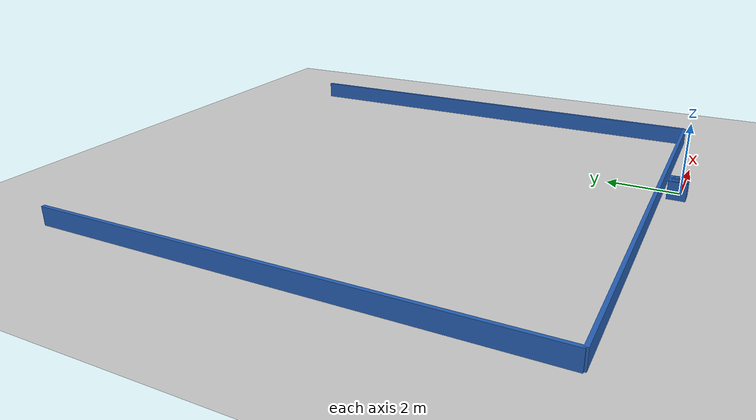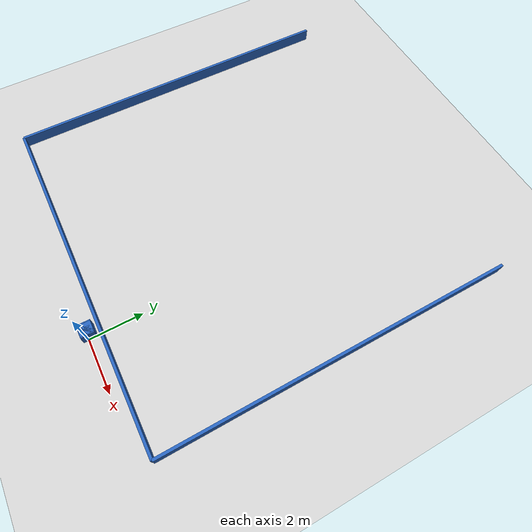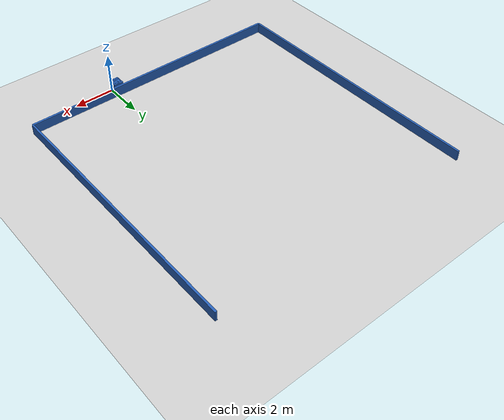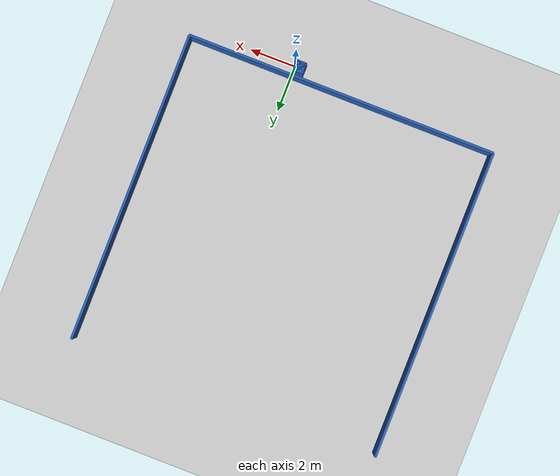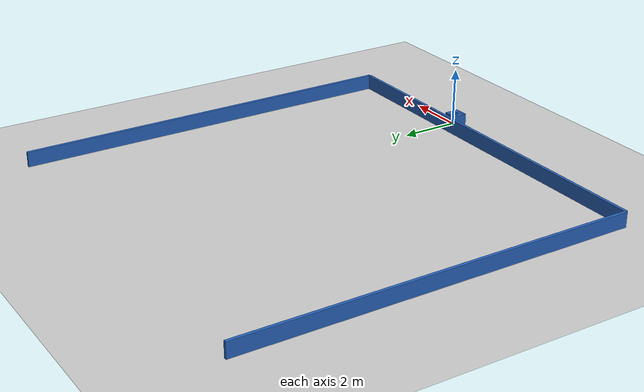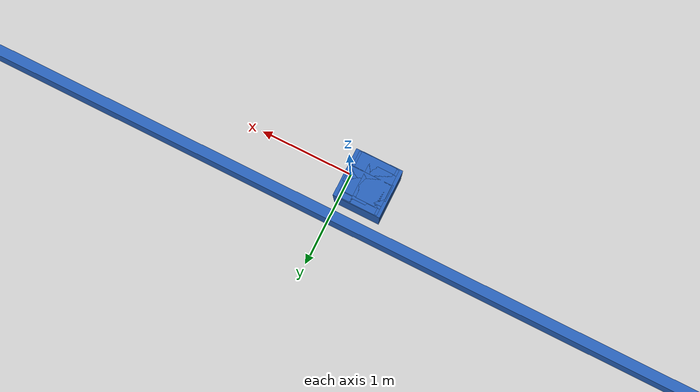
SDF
<?xml version="1.0" ?>
    <sdf version="1.5">
      <world name="default">
        <!-- A global light source -->
        <include>
          <uri>model://sun</uri>
        </include>
        <!-- A ground plane -->
        <include>
          <uri>model://ground_plane</uri>
        </include>

    <model name='libopen_space_final_T2B_105_8'>
      <static>1</static>
      <pose frame=''>-0.225000 0.075000 0.000000 0.000000 0.000000 0.000000</pose>
      <link name='link'>
        <inertial>
          <mass>1</mass>
          <inertia>
            <ixx>0.145833</ixx>
            <ixy>0</ixy>
            <ixz>0</ixz>
            <iyy>0.145833</iyy>
            <iyz>0</iyz>
            <izz>0.125</izz>
          </inertia>
        </inertial>
        <collision name='collision'>
          <geometry>
            <box>
              <size>0.42 0.48 1</size>
            </box>
          </geometry>
          <max_contacts>10</max_contacts>
          <surface>
            <contact>
              <ode/>
            </contact>
            <bounce/>
            <friction>
              <torsional>
                <ode/>
              </torsional>
              <ode/>
            </friction>
          </surface>
        </collision>
        <visual name='visual'>
          <geometry>
            <box>
              <size>0.42 0.48 1</size>
            </box>
          </geometry>
	    <material>
              <ambient>0.152000 0.379000 0.720000 1</ambient>
	      <diffuse>0.152000 0.379000 0.720000 1</diffuse>
          </material>
          <material>
            <script>
              <name>Gazebo/Grey</name>
              <uri>file://media/materials/scripts/gazebo.material</uri>
            </script>
          </material>
        </visual>
        <self_collide>0</self_collide>
        <kinematic>0</kinematic>
        <gravity>1</gravity>
      </link>
      <plugin name='libopen_space_final_T2B_105_8' filename='libopen_space_final_T2B_105_8.so'/>
    </model>

    <model name='libopen_space_final_T2B_51_1'>
      <static>1</static>
      <pose frame=''>-0.225000 0.075000 0.000000 0.000000 0.000000 0.000000</pose>
      <link name='link'>
        <inertial>
          <mass>1</mass>
          <inertia>
            <ixx>0.145833</ixx>
            <ixy>0</ixy>
            <ixz>0</ixz>
            <iyy>0.145833</iyy>
            <iyz>0</iyz>
            <izz>0.125</izz>
          </inertia>
        </inertial>
        <collision name='collision'>
          <geometry>
            <box>
              <size>0.40 0.24 1</size>
            </box>
          </geometry>
          <max_contacts>10</max_contacts>
          <surface>
            <contact>
              <ode/>
            </contact>
            <bounce/>
            <friction>
              <torsional>
                <ode/>
              </torsional>
              <ode/>
            </friction>
          </surface>
        </collision>
        <visual name='visual'>
          <geometry>
            <box>
              <size>0.40 0.24 1</size>
            </box>
          </geometry>
	    <material>
              <ambient>0.152000 0.379000 0.720000 1</ambient>
	      <diffuse>0.152000 0.379000 0.720000 1</diffuse>
          </material>
          <material>
            <script>
              <name>Gazebo/Grey</name>
              <uri>file://media/materials/scripts/gazebo.material</uri>
            </script>
          </material>
        </visual>
        <self_collide>0</self_collide>
        <kinematic>0</kinematic>
        <gravity>1</gravity>
      </link>
      <plugin name='libopen_space_final_T2B_51_1' filename='libopen_space_final_T2B_51_1.so'/>
    </model>

    <model name='libopen_space_final_T2B_116_74'>
      <static>1</static>
      <pose frame=''>-0.225000 0.075000 0.000000 0.000000 0.000000 0.000000</pose>
      <link name='link'>
        <inertial>
          <mass>1</mass>
          <inertia>
            <ixx>0.145833</ixx>
            <ixy>0</ixy>
            <ixz>0</ixz>
            <iyy>0.145833</iyy>
            <iyz>0</iyz>
            <izz>0.125</izz>
          </inertia>
        </inertial>
        <collision name='collision'>
          <geometry>
            <box>
              <size>0.12 0.32 1</size>
            </box>
          </geometry>
          <max_contacts>10</max_contacts>
          <surface>
            <contact>
              <ode/>
            </contact>
            <bounce/>
            <friction>
              <torsional>
                <ode/>
              </torsional>
              <ode/>
            </friction>
          </surface>
        </collision>
        <visual name='visual'>
          <geometry>
            <box>
              <size>0.12 0.32 1</size>
            </box>
          </geometry>
	    <material>
              <ambient>0.152000 0.379000 0.720000 1</ambient>
	      <diffuse>0.152000 0.379000 0.720000 1</diffuse>
          </material>
          <material>
            <script>
              <name>Gazebo/Grey</name>
              <uri>file://media/materials/scripts/gazebo.material</uri>
            </script>
          </material>
        </visual>
        <self_collide>0</self_collide>
        <kinematic>0</kinematic>
        <gravity>1</gravity>
      </link>
      <plugin name='libopen_space_final_T2B_116_74' filename='libopen_space_final_T2B_116_74.so'/>
    </model>

    <model name='libopen_space_final_T2B_73_55'>
      <static>1</static>
      <pose frame=''>-0.225000 0.075000 0.000000 0.000000 0.000000 0.000000</pose>
      <link name='link'>
        <inertial>
          <mass>1</mass>
          <inertia>
            <ixx>0.145833</ixx>
            <ixy>0</ixy>
            <ixz>0</ixz>
            <iyy>0.145833</iyy>
            <iyz>0</iyz>
            <izz>0.125</izz>
          </inertia>
        </inertial>
        <collision name='collision'>
          <geometry>
            <box>
              <size>0.15 0.34 1</size>
            </box>
          </geometry>
          <max_contacts>10</max_contacts>
          <surface>
            <contact>
              <ode/>
            </contact>
            <bounce/>
            <friction>
              <torsional>
                <ode/>
              </torsional>
              <ode/>
            </friction>
          </surface>
        </collision>
        <visual name='visual'>
          <geometry>
            <box>
              <size>0.15 0.34 1</size>
            </box>
          </geometry>
	    <material>
              <ambient>0.152000 0.379000 0.720000 1</ambient>
	      <diffuse>0.152000 0.379000 0.720000 1</diffuse>
          </material>
          <material>
            <script>
              <name>Gazebo/Grey</name>
              <uri>file://media/materials/scripts/gazebo.material</uri>
            </script>
          </material>
        </visual>
        <self_collide>0</self_collide>
        <kinematic>0</kinematic>
        <gravity>1</gravity>
      </link>
      <plugin name='libopen_space_final_T2B_73_55' filename='libopen_space_final_T2B_73_55.so'/>
    </model>

    <model name='libopen_space_final_T2B_81_4'>
      <static>1</static>
      <pose frame=''>-0.225000 0.075000 0.000000 0.000000 0.000000 0.000000</pose>
      <link name='link'>
        <inertial>
          <mass>1</mass>
          <inertia>
            <ixx>0.145833</ixx>
            <ixy>0</ixy>
            <ixz>0</ixz>
            <iyy>0.145833</iyy>
            <iyz>0</iyz>
            <izz>0.125</izz>
          </inertia>
        </inertial>
        <collision name='collision'>
          <geometry>
            <box>
              <size>0.37 0.49 1</size>
            </box>
          </geometry>
          <max_contacts>10</max_contacts>
          <surface>
            <contact>
              <ode/>
            </contact>
            <bounce/>
            <friction>
              <torsional>
                <ode/>
              </torsional>
              <ode/>
            </friction>
          </surface>
        </collision>
        <visual name='visual'>
          <geometry>
            <box>
              <size>0.37 0.49 1</size>
            </box>
          </geometry>
	    <material>
              <ambient>0.152000 0.379000 0.720000 1</ambient>
	      <diffuse>0.152000 0.379000 0.720000 1</diffuse>
          </material>
          <material>
            <script>
              <name>Gazebo/Grey</name>
              <uri>file://media/materials/scripts/gazebo.material</uri>
            </script>
          </material>
        </visual>
        <self_collide>0</self_collide>
        <kinematic>0</kinematic>
        <gravity>1</gravity>
      </link>
      <plugin name='libopen_space_final_T2B_81_4' filename='libopen_space_final_T2B_81_4.so'/>
    </model>

    <model name='libopen_space_final_T2B_91_29'>
      <static>1</static>
      <pose frame=''>-0.225000 0.075000 0.000000 0.000000 0.000000 0.000000</pose>
      <link name='link'>
        <inertial>
          <mass>1</mass>
          <inertia>
            <ixx>0.145833</ixx>
            <ixy>0</ixy>
            <ixz>0</ixz>
            <iyy>0.145833</iyy>
            <iyz>0</iyz>
            <izz>0.125</izz>
          </inertia>
        </inertial>
        <collision name='collision'>
          <geometry>
            <box>
              <size>0.43 0.14 1</size>
            </box>
          </geometry>
          <max_contacts>10</max_contacts>
          <surface>
            <contact>
              <ode/>
            </contact>
            <bounce/>
            <friction>
              <torsional>
                <ode/>
              </torsional>
              <ode/>
            </friction>
          </surface>
        </collision>
        <visual name='visual'>
          <geometry>
            <box>
              <size>0.43 0.14 1</size>
            </box>
          </geometry>
	    <material>
              <ambient>0.152000 0.379000 0.720000 1</ambient>
	      <diffuse>0.152000 0.379000 0.720000 1</diffuse>
          </material>
          <material>
            <script>
              <name>Gazebo/Grey</name>
              <uri>file://media/materials/scripts/gazebo.material</uri>
            </script>
          </material>
        </visual>
        <self_collide>0</self_collide>
        <kinematic>0</kinematic>
        <gravity>1</gravity>
      </link>
      <plugin name='libopen_space_final_T2B_91_29' filename='libopen_space_final_T2B_91_29.so'/>
    </model>

    <model name='libopen_space_final_T2B_79_93'>
      <static>1</static>
      <pose frame=''>-0.225000 0.075000 0.000000 0.000000 0.000000 0.000000</pose>
      <link name='link'>
        <inertial>
          <mass>1</mass>
          <inertia>
            <ixx>0.145833</ixx>
            <ixy>0</ixy>
            <ixz>0</ixz>
            <iyy>0.145833</iyy>
            <iyz>0</iyz>
            <izz>0.125</izz>
          </inertia>
        </inertial>
        <collision name='collision'>
          <geometry>
            <box>
              <size>0.15 0.40 1</size>
            </box>
          </geometry>
          <max_contacts>10</max_contacts>
          <surface>
            <contact>
              <ode/>
            </contact>
            <bounce/>
            <friction>
              <torsional>
                <ode/>
              </torsional>
              <ode/>
            </friction>
          </surface>
        </collision>
        <visual name='visual'>
          <geometry>
            <box>
              <size>0.15 0.40 1</size>
            </box>
          </geometry>
	    <material>
              <ambient>0.152000 0.379000 0.720000 1</ambient>
	      <diffuse>0.152000 0.379000 0.720000 1</diffuse>
          </material>
          <material>
            <script>
              <name>Gazebo/Grey</name>
              <uri>file://media/materials/scripts/gazebo.material</uri>
            </script>
          </material>
        </visual>
        <self_collide>0</self_collide>
        <kinematic>0</kinematic>
        <gravity>1</gravity>
      </link>
      <plugin name='libopen_space_final_T2B_79_93' filename='libopen_space_final_T2B_79_93.so'/>
    </model>

    <model name='libopen_space_final_T2B_64_52'>
      <static>1</static>
      <pose frame=''>-0.225000 0.075000 0.000000 0.000000 0.000000 0.000000</pose>
      <link name='link'>
        <inertial>
          <mass>1</mass>
          <inertia>
            <ixx>0.145833</ixx>
            <ixy>0</ixy>
            <ixz>0</ixz>
            <iyy>0.145833</iyy>
            <iyz>0</iyz>
            <izz>0.125</izz>
          </inertia>
        </inertial>
        <collision name='collision'>
          <geometry>
            <box>
              <size>0.45 0.17 1</size>
            </box>
          </geometry>
          <max_contacts>10</max_contacts>
          <surface>
            <contact>
              <ode/>
            </contact>
            <bounce/>
            <friction>
              <torsional>
                <ode/>
              </torsional>
              <ode/>
            </friction>
          </surface>
        </collision>
        <visual name='visual'>
          <geometry>
            <box>
              <size>0.45 0.17 1</size>
            </box>
          </geometry>
	    <material>
              <ambient>0.152000 0.379000 0.720000 1</ambient>
	      <diffuse>0.152000 0.379000 0.720000 1</diffuse>
          </material>
          <material>
            <script>
              <name>Gazebo/Grey</name>
              <uri>file://media/materials/scripts/gazebo.material</uri>
            </script>
          </material>
        </visual>
        <self_collide>0</self_collide>
        <kinematic>0</kinematic>
        <gravity>1</gravity>
      </link>
      <plugin name='libopen_space_final_T2B_64_52' filename='libopen_space_final_T2B_64_52.so'/>
    </model>

    <model name='libopen_space_final_T2B_103_35'>
      <static>1</static>
      <pose frame=''>-0.225000 0.075000 0.000000 0.000000 0.000000 0.000000</pose>
      <link name='link'>
        <inertial>
          <mass>1</mass>
          <inertia>
            <ixx>0.145833</ixx>
            <ixy>0</ixy>
            <ixz>0</ixz>
            <iyy>0.145833</iyy>
            <iyz>0</iyz>
            <izz>0.125</izz>
          </inertia>
        </inertial>
        <collision name='collision'>
          <geometry>
            <box>
              <size>0.49 0.50 1</size>
            </box>
          </geometry>
          <max_contacts>10</max_contacts>
          <surface>
            <contact>
              <ode/>
            </contact>
            <bounce/>
            <friction>
              <torsional>
                <ode/>
              </torsional>
              <ode/>
            </friction>
          </surface>
        </collision>
        <visual name='visual'>
          <geometry>
            <box>
              <size>0.49 0.50 1</size>
            </box>
          </geometry>
	    <material>
              <ambient>0.152000 0.379000 0.720000 1</ambient>
	      <diffuse>0.152000 0.379000 0.720000 1</diffuse>
          </material>
          <material>
            <script>
              <name>Gazebo/Grey</name>
              <uri>file://media/materials/scripts/gazebo.material</uri>
            </script>
          </material>
        </visual>
        <self_collide>0</self_collide>
        <kinematic>0</kinematic>
        <gravity>1</gravity>
      </link>
      <plugin name='libopen_space_final_T2B_103_35' filename='libopen_space_final_T2B_103_35.so'/>
    </model>

    <model name='libopen_space_final_T2B_111_91'>
      <static>1</static>
      <pose frame=''>-0.225000 0.075000 0.000000 0.000000 0.000000 0.000000</pose>
      <link name='link'>
        <inertial>
          <mass>1</mass>
          <inertia>
            <ixx>0.145833</ixx>
            <ixy>0</ixy>
            <ixz>0</ixz>
            <iyy>0.145833</iyy>
            <iyz>0</iyz>
            <izz>0.125</izz>
          </inertia>
        </inertial>
        <collision name='collision'>
          <geometry>
            <box>
              <size>0.41 0.16 1</size>
            </box>
          </geometry>
          <max_contacts>10</max_contacts>
          <surface>
            <contact>
              <ode/>
            </contact>
            <bounce/>
            <friction>
              <torsional>
                <ode/>
              </torsional>
              <ode/>
            </friction>
          </surface>
        </collision>
        <visual name='visual'>
          <geometry>
            <box>
              <size>0.41 0.16 1</size>
            </box>
          </geometry>
	    <material>
              <ambient>0.152000 0.379000 0.720000 1</ambient>
	      <diffuse>0.152000 0.379000 0.720000 1</diffuse>
          </material>
          <material>
            <script>
              <name>Gazebo/Grey</name>
              <uri>file://media/materials/scripts/gazebo.material</uri>
            </script>
          </material>
        </visual>
        <self_collide>0</self_collide>
        <kinematic>0</kinematic>
        <gravity>1</gravity>
      </link>
      <plugin name='libopen_space_final_T2B_111_91' filename='libopen_space_final_T2B_111_91.so'/>
    </model>

    <model name='libopen_space_final_T2B_115_72'>
      <static>1</static>
      <pose frame=''>-0.225000 0.075000 0.000000 0.000000 0.000000 0.000000</pose>
      <link name='link'>
        <inertial>
          <mass>1</mass>
          <inertia>
            <ixx>0.145833</ixx>
            <ixy>0</ixy>
            <ixz>0</ixz>
            <iyy>0.145833</iyy>
            <iyz>0</iyz>
            <izz>0.125</izz>
          </inertia>
        </inertial>
        <collision name='collision'>
          <geometry>
            <box>
              <size>0.42 0.29 1</size>
            </box>
          </geometry>
          <max_contacts>10</max_contacts>
          <surface>
            <contact>
              <ode/>
            </contact>
            <bounce/>
            <friction>
              <torsional>
                <ode/>
              </torsional>
              <ode/>
            </friction>
          </surface>
        </collision>
        <visual name='visual'>
          <geometry>
            <box>
              <size>0.42 0.29 1</size>
            </box>
          </geometry>
	    <material>
              <ambient>0.152000 0.379000 0.720000 1</ambient>
	      <diffuse>0.152000 0.379000 0.720000 1</diffuse>
          </material>
          <material>
            <script>
              <name>Gazebo/Grey</name>
              <uri>file://media/materials/scripts/gazebo.material</uri>
            </script>
          </material>
        </visual>
        <self_collide>0</self_collide>
        <kinematic>0</kinematic>
        <gravity>1</gravity>
      </link>
      <plugin name='libopen_space_final_T2B_115_72' filename='libopen_space_final_T2B_115_72.so'/>
    </model>

    <model name='libopen_space_final_T2B_66_3'>
      <static>1</static>
      <pose frame=''>-0.225000 0.075000 0.000000 0.000000 0.000000 0.000000</pose>
      <link name='link'>
        <inertial>
          <mass>1</mass>
          <inertia>
            <ixx>0.145833</ixx>
            <ixy>0</ixy>
            <ixz>0</ixz>
            <iyy>0.145833</iyy>
            <iyz>0</iyz>
            <izz>0.125</izz>
          </inertia>
        </inertial>
        <collision name='collision'>
          <geometry>
            <box>
              <size>0.35 0.36 1</size>
            </box>
          </geometry>
          <max_contacts>10</max_contacts>
          <surface>
            <contact>
              <ode/>
            </contact>
            <bounce/>
            <friction>
              <torsional>
                <ode/>
              </torsional>
              <ode/>
            </friction>
          </surface>
        </collision>
        <visual name='visual'>
          <geometry>
            <box>
              <size>0.35 0.36 1</size>
            </box>
          </geometry>
	    <material>
              <ambient>0.152000 0.379000 0.720000 1</ambient>
	      <diffuse>0.152000 0.379000 0.720000 1</diffuse>
          </material>
          <material>
            <script>
              <name>Gazebo/Grey</name>
              <uri>file://media/materials/scripts/gazebo.material</uri>
            </script>
          </material>
        </visual>
        <self_collide>0</self_collide>
        <kinematic>0</kinematic>
        <gravity>1</gravity>
      </link>
      <plugin name='libopen_space_final_T2B_66_3' filename='libopen_space_final_T2B_66_3.so'/>
    </model>

    <model name='libopen_space_final_T2B_141_33'>
      <static>1</static>
      <pose frame=''>-0.225000 0.075000 0.000000 0.000000 0.000000 0.000000</pose>
      <link name='link'>
        <inertial>
          <mass>1</mass>
          <inertia>
            <ixx>0.145833</ixx>
            <ixy>0</ixy>
            <ixz>0</ixz>
            <iyy>0.145833</iyy>
            <iyz>0</iyz>
            <izz>0.125</izz>
          </inertia>
        </inertial>
        <collision name='collision'>
          <geometry>
            <box>
              <size>0.42 0.35 1</size>
            </box>
          </geometry>
          <max_contacts>10</max_contacts>
          <surface>
            <contact>
              <ode/>
            </contact>
            <bounce/>
            <friction>
              <torsional>
                <ode/>
              </torsional>
              <ode/>
            </friction>
          </surface>
        </collision>
        <visual name='visual'>
          <geometry>
            <box>
              <size>0.42 0.35 1</size>
            </box>
          </geometry>
	    <material>
              <ambient>0.152000 0.379000 0.720000 1</ambient>
	      <diffuse>0.152000 0.379000 0.720000 1</diffuse>
          </material>
          <material>
            <script>
              <name>Gazebo/Grey</name>
              <uri>file://media/materials/scripts/gazebo.material</uri>
            </script>
          </material>
        </visual>
        <self_collide>0</self_collide>
        <kinematic>0</kinematic>
        <gravity>1</gravity>
      </link>
      <plugin name='libopen_space_final_T2B_141_33' filename='libopen_space_final_T2B_141_33.so'/>
    </model>

        <model name='bottom_wall'>
          <static>1</static>
          <pose frame=''>-2.25 0.5 0.000000 0.000000 0.000000 1.57079632</pose>
          <link name='link'>
            <inertial>
            <mass>1</mass>
            <inertia>
              <ixx>0.145833</ixx>
              <ixy>0</ixy>
              <ixz>0</ixz>
              <iyy>0.145833</iyy>
              <iyz>0</iyz>
              <izz>0.125</izz>
            </inertia>
            </inertial>
            <collision name='collision'>
            <geometry>
              <box>
              <size>0.1 13.5 1</size>
              </box>
            </geometry>
            <max_contacts>10</max_contacts>
            <surface>
              <contact>
              <ode/>
              </contact>
              <bounce/>
              <friction>
              <torsional>
                <ode/>
              </torsional>
              <ode/>
              </friction>
            </surface>
            </collision>
            <visual name='visual'>
            <geometry>
              <box>
              <size>0.1 13.5 1</size>
              </box>
            </geometry>
            <material>
              <ambient>0.152000 0.379000 0.720000 1</ambient>
            <diffuse>0.152000 0.379000 0.720000 1</diffuse>
            </material>
            <material>
              <script>
              <name>Gazebo/Grey</name>
              <uri>file://media/materials/scripts/gazebo.material</uri>
              </script>
            </material>
            </visual>
            <self_collide>0</self_collide>
            <kinematic>0</kinematic>
            <gravity>1</gravity>
          </link>
        </model>

        <model name='left_wall'>
          <static>1</static>
          <pose frame=''>-9 7.25 0.000000 0.000000 0.000000 0.000000</pose>
          <link name='link'>
            <inertial>
            <mass>1</mass>
            <inertia>
              <ixx>0.145833</ixx>
              <ixy>0</ixy>
              <ixz>0</ixz>
              <iyy>0.145833</iyy>
              <iyz>0</iyz>
              <izz>0.125</izz>
            </inertia>
            </inertial>
            <collision name='collision'>
            <geometry>
              <box>
              <size>0.1 13.5 1</size>
              </box>
            </geometry>
            <max_contacts>10</max_contacts>
            <surface>
              <contact>
              <ode/>
              </contact>
              <bounce/>
              <friction>
              <torsional>
                <ode/>
              </torsional>
              <ode/>
              </friction>
            </surface>
            </collision>
            <visual name='visual'>
            <geometry>
              <box>
              <size>0.1 13.5 1</size>
              </box>
            </geometry>
            <material>
              <ambient>0.152000 0.379000 0.720000 1</ambient>
            <diffuse>0.152000 0.379000 0.720000 1</diffuse>
            </material>
            <material>
              <script>
              <name>Gazebo/Grey</name>
              <uri>file://media/materials/scripts/gazebo.material</uri>
              </script>
            </material>
            </visual>
            <self_collide>0</self_collide>
            <kinematic>0</kinematic>
            <gravity>1</gravity>
          </link>
        </model>

        <model name='right_wall'>
          <static>1</static>
          <pose frame=''>4.5 7.25 0.000000 0.000000 0.000000 0.000000</pose>
          <link name='link'>
            <inertial>
            <mass>1</mass>
            <inertia>
              <ixx>0.145833</ixx>
              <ixy>0</ixy>
              <ixz>0</ixz>
              <iyy>0.145833</iyy>
              <iyz>0</iyz>
              <izz>0.125</izz>
            </inertia>
            </inertial>
            <collision name='collision'>
            <geometry>
              <box>
              <size>0.1 13.5 1</size>
              </box>
            </geometry>
            <max_contacts>10</max_contacts>
            <surface>
              <contact>
              <ode/>
              </contact>
              <bounce/>
              <friction>
              <torsional>
                <ode/>
              </torsional>
              <ode/>
              </friction>
            </surface>
            </collision>
            <visual name='visual'>
            <geometry>
              <box>
              <size>0.1 13.5 1</size>
              </box>
            </geometry>
            <material>
              <ambient>0.152000 0.379000 0.720000 1</ambient>
            <diffuse>0.152000 0.379000 0.720000 1</diffuse>
            </material>
            <material>
              <script>
              <name>Gazebo/Grey</name>
              <uri>file://media/materials/scripts/gazebo.material</uri>
              </script>
            </material>
            </visual>
            <self_collide>0</self_collide>
            <kinematic>0</kinematic>
            <gravity>1</gravity>
          </link>
        </model>

      </world>
    </sdf>"
